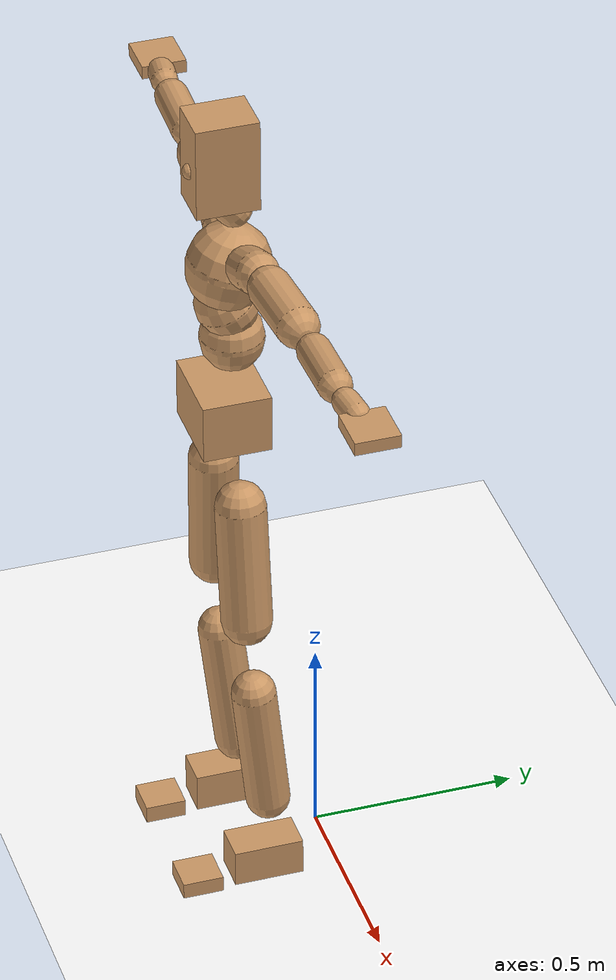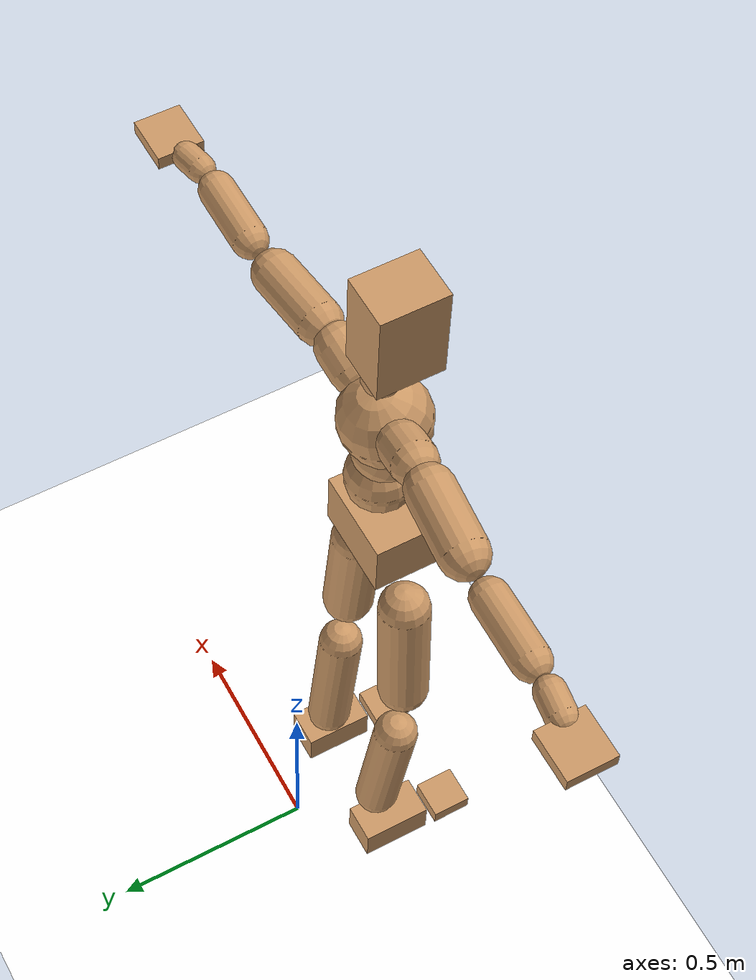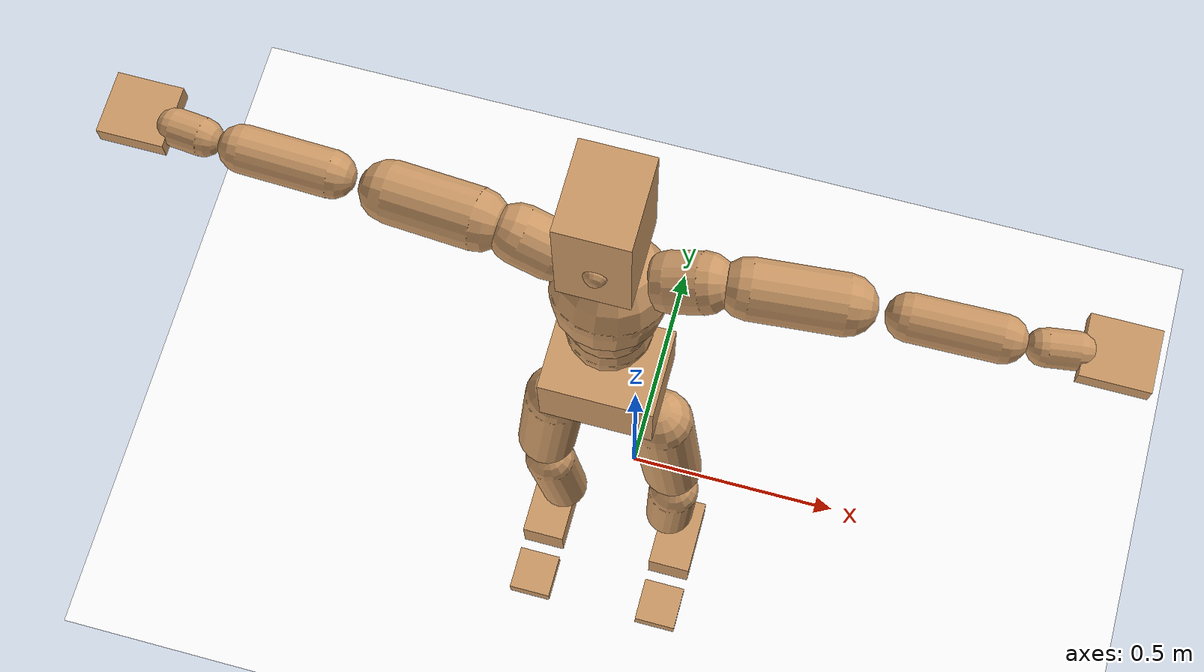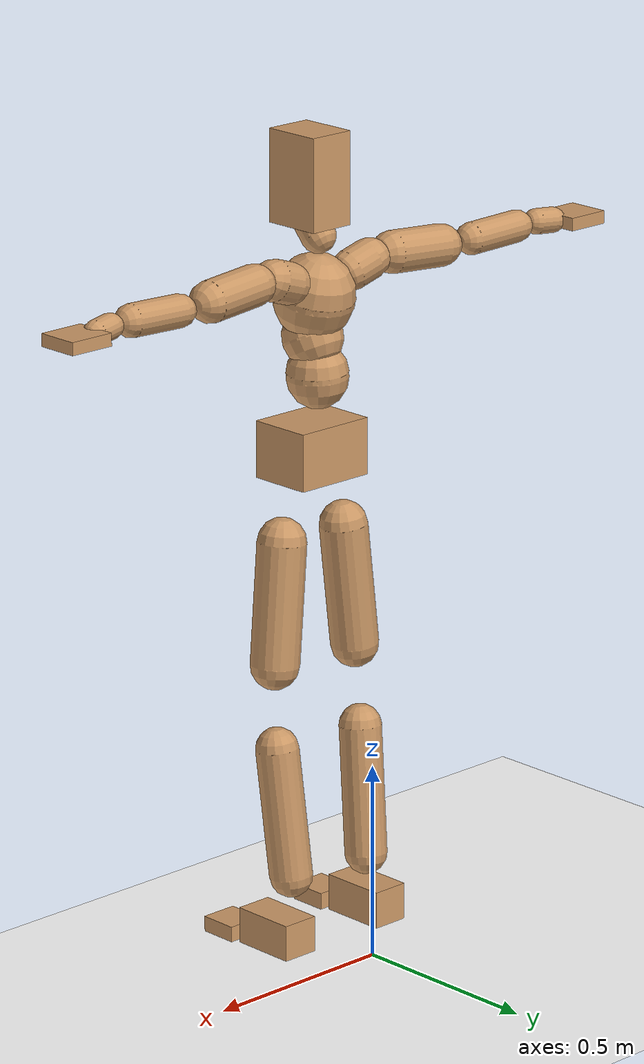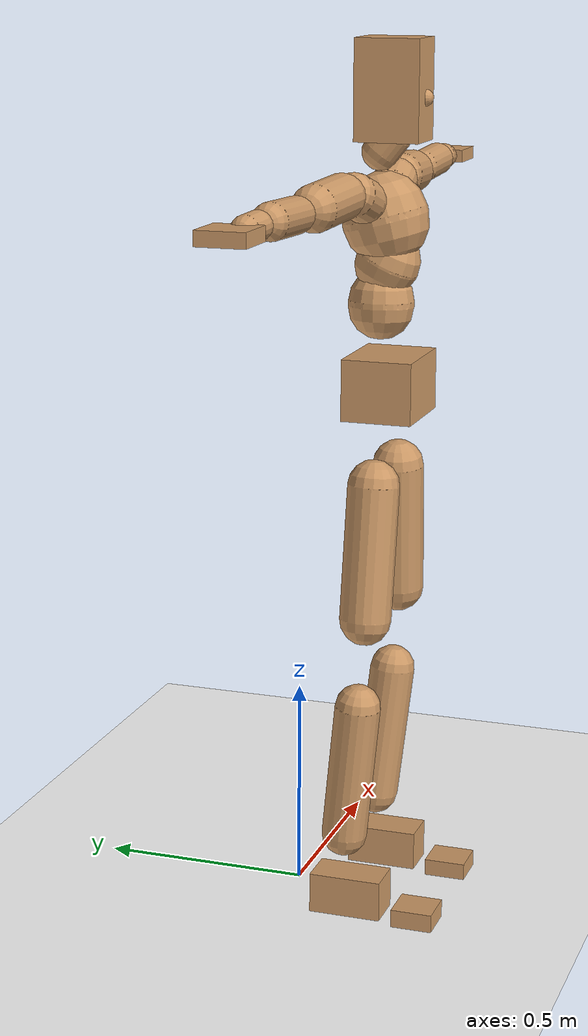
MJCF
<mujoco model="humanoid">
  <option integrator="implicitfast" />

  <visual>
    <global offwidth="1280" offheight="960" />
    <headlight active="1" ambient="0.34 0.34 0.34" diffuse="0.5 0.5 0.5" />
  </visual>

  <default>
    <joint damping="2" stiffness="2" armature="0.01" limited="true" solimplimit="0 .99 .01" />
    <geom condim="1" friction="0.7 0.005 0.0001" solimp=".99 .99 .003" solref="0.015 1" margin="0.001" rgba="0.8 0.6 .4 1" />
    <default class="smplcontact">
      <geom condim="3" friction="1. 0.005 0.0001" solref="0.015 1" solimp="0.98 0.98 0.001" priority="1" />
    </default>
    <default class="stiff_medium">
      <joint stiffness="10" />
    </default>
    <default class="stiff_medium_higher">
      <joint stiffness="50" />
    </default>
    <default class="stiff_high">
      <joint stiffness="100" />
    </default>
  </default>

  <asset>
    <texture type="skybox" builtin="gradient" rgb1="0.99 0.99 0.99" rgb2="0.608 0.828 0.892" width="100" />
    <texture builtin="flat" height="1278" mark="cross" markrgb="1 1 1" name="texgeom" random="0.01" rgb1="0.8 0.6 0.4" rgb2="0.8 0.6 0.4" type="cube" width="127" />
    <texture name="texplane" type="2d" builtin="checker" markrgb="1 1 1" rgb1="0.756 0.772 0.76" rgb2="0.6 0.6 0.6" width="100" height="100" />
    <material name="MatPlane" reflectance="0.5" texture="texplane" texrepeat="1 1" texuniform="true" />
    <material name="geom" texture="texgeom" texuniform="true" />
  </asset>

  <worldbody>
    <light name="tracking_light" pos="0 0 7" dir="0 0 -1" directional="true" cutoff="100" exponent="1" diffuse="1 1 1" specular="0.1 0.1 0.1" mode="trackcom" />
    <camera name="back" pos="0 3 2.4" xyaxes="-1 0 0 0 -1 2" mode="trackcom" />
    <camera name="side" pos="-3 0 2.4" xyaxes="0 -1 0 1 0 2" mode="trackcom" />
    <camera name="front_side" pos="-2.8 -2.8 0.8" xyaxes="0.5 -0.5 0 0.1 0.1 1" mode="trackcom" />
    <geom condim="3" name="floor" pos="0 0 0" rgba="1 1 1 1" size="100 100 .2" type="plane" material="MatPlane" />
    <body name="Pelvis" pos="-0.0018 -0.2233 1.27986" euler="90 0 0">
      <site name="Pelvis" size="0.01" />
      <freejoint name="Pelvis" />
      <geom type="box" pos="-0.0000 -0.0121 -0.0055" size="0.1069 0.0722 0.083" quat="1.0000 0.0000 0.0000 0.0000" density="3165.830099" name="Pelvis" />
      <body name="L_Hip" pos="0.0955625 -0.125675 -0.00935">
        <joint name="L_Hip_x" type="hinge" pos="0 0 0" axis="1 0 0" stiffness="17.19020566666667" range="-160.0 22.92" class="stiff_medium" damping="29.622439389561787" armature="0.022687051049198846"/>
        <joint name="L_Hip_y" type="hinge" pos="0 0 0" axis="0 1 0" stiffness="17.101416333333336" range="-70.0 70.0" class="stiff_medium" damping="16.762105650061567" armature="0.016429527259457156"/>
        <joint name="L_Hip_z" type="hinge" pos="0 0 0" axis="0 0 1" stiffness="17.118365555555556" range="-28.65 90.0" class="stiff_medium" damping="19.710911394653888" armature="0.022696093663089646"/>
        <geom type="capsule" density="2040.816327" fromto="0.0094875 -0.103125 -0.0012375 0.037675 -0.412775 -0.00495" size="0.0615" name="L_Hip" />
        <body name="L_Knee" pos="0.0471625 -0.5159 -0.0061875">
          <joint name="L_Knee_x" type="hinge" pos="0 0 0" axis="1 0 0" range="-5.16 171.89" damping="15.05645310304658" armature="0.021343797365827893" stiffness="3.3191255777777773"/>
          <joint name="L_Knee_y" type="hinge" pos="0 0 0" axis="0 1 0" range="-4.58 6.88" damping="12.97569919878145" armature="0.015441578364462114" stiffness="3.4073745111111107"/>
          <joint name="L_Knee_z" type="hinge" pos="0 0 0" axis="0 0 1" range="-6.88 4.58" damping="15.03681325523065" armature="0.021384230246159524" stiffness="3.3042128222222216"/>
          <geom type="capsule" density="1234.567901" fromto="-0.0037125 -0.10945 -0.0119625 -0.0149875 -0.4378 -0.048125" size="0.0541" name="L_Knee" />
          <body name="L_Ankle" pos="-0.0187 -0.54725 -0.0600875">
            <joint name="L_Ankle_x" type="hinge" pos="0 0 0" axis="1 0 0" range="-45.84 45.84" class="stiff_medium" damping="8.859849215456915" armature="0.01585794451740445" stiffness="13.750018"/>
            <joint name="L_Ankle_y" type="hinge" pos="0 0 0" axis="0 1 0" range="-74.48 22.92" class="stiff_medium" damping="4.399379476848856" armature="0.015640018623433526" stiffness="13.750011888888888"/>
            <joint name="L_Ankle_z" type="hinge" pos="0 0 0" axis="0 0 1" range="-4.58 4.58" class="stiff_medium" damping="8.387836414114041" armature="0.014213292870694443" stiffness="13.75"/>
            <geom type="box" pos="0.0320375 -0.0328625 0.033275" size="0.0483 0.0464 0.085" quat="1.0000 0.0000 0.0000 0.0000" density="449.071558" name="L_Ankle" class="smplcontact" />
            <body name="L_Toe" pos="0.0363 -0.076725 0.164038">
              <joint name="L_Toe_x" type="hinge" pos="0 0 0" axis="1 0 0" range="-91.67 22.92" armature="0.013386048586152204" damping="2.7133607799892205" stiffness="2.75"/>
              <joint name="L_Toe_y" type="hinge" pos="0 0 0" axis="0 1 0" range="-4.58 4.58" armature="0.012385744586589299" damping="2.610011402776646" stiffness="2.75"/>
              <joint name="L_Toe_z" type="hinge" pos="0 0 0" axis="0 0 1" range="-4.58 4.58" armature="0.010363183740583495" damping="2.3874151413863745" stiffness="2.75"/>
              <geom type="box" pos="-0.004125 0.0075625 0.0341" size="0.0478 0.02 0.0496" quat="1.0000 0.0000 0.0000 0.0000" density="423.206892" name="L_Toe" class="smplcontact" />
            </body>
          </body>
        </body>
      </body>
      <body name="R_Hip" pos="-0.0930875 -0.124437 -0.0059125">
        <joint name="R_Hip_x" type="hinge" pos="0 0 0" axis="1 0 0" stiffness="17.19020566666667" range="-160.0 22.92" class="stiff_medium" damping="29.622439389561787" armature="0.022687051049198846"/>
        <joint name="R_Hip_y" type="hinge" pos="0 0 0" axis="0 1 0" stiffness="17.101416333333336" range="-70.0 70.0" class="stiff_medium" damping="16.762105650061567" armature="0.016429527259457156"/>
        <joint name="R_Hip_z" type="hinge" pos="0 0 0" axis="0 0 1" stiffness="17.118365555555556" range="-90.0 28.65" class="stiff_medium" damping="19.710911394653888" armature="0.022696093663089646"/>
        <geom type="capsule" density="2040.816327" fromto="-0.0105875 -0.105188 -0.002475 -0.042075 -0.420887 -0.0097625" size="0.0606" name="R_Hip" />
        <body name="R_Knee" pos="-0.0526625 -0.526075 -0.0122375">
          <joint name="R_Knee_x" type="hinge" pos="0 0 0" axis="1 0 0" range="-5.16 171.89" damping="15.05645310304658" armature="0.021343797365827893" stiffness="3.3191255777777773"/>
          <joint name="R_Knee_y" type="hinge" pos="0 0 0" axis="0 1 0" range="-6.88 4.58" damping="12.97569919878145" armature="0.015441578364462114" stiffness="3.4073745111111107"/>
          <joint name="R_Knee_z" type="hinge" pos="0 0 0" axis="0 0 1" range="-4.58 6.88" damping="15.03681325523065" armature="0.021384230246159524" stiffness="3.3042128222222216"/>
          <geom type="capsule" density="1234.567901" fromto="0.0044 -0.109587 -0.0116875 0.017325 -0.438213 -0.046475" size="0.0541" name="R_Knee" />
          <body name="R_Ankle" pos="0.021725 -0.5478 -0.0581625">
            <joint name="R_Ankle_x" type="hinge" pos="0 0 0" axis="1 0 0" range="-45.84 45.84" class="stiff_medium" damping="8.859849215456915" armature="0.01585794451740445" stiffness="13.750018"/>
            <joint name="R_Ankle_y" type="hinge" pos="0 0 0" axis="0 1 0" range="-22.92 74.48" class="stiff_medium" damping="4.399379476848856" armature="0.015640018623433526" stiffness="13.750011888888888"/>
            <joint name="R_Ankle_z" type="hinge" pos="0 0 0" axis="0 0 1" range="-4.58 4.58" class="stiff_medium" damping="8.387836414114041" armature="0.014213292870694443" stiffness="13.75"/>
            <geom type="box" pos="-0.02915 -0.023925 0.0352" size="0.0483 0.0478 0.0865" quat="1.0000 0.0000 0.0000 0.0000" density="434.700981" name="R_Ankle" class="smplcontact" />
            <body name="R_Toe" pos="-0.034925 -0.0661375 0.169538">
              <joint name="R_Toe_x" type="hinge" pos="0 0 0" axis="1 0 0" range="-91.67 22.92" armature="0.013386048586152204" damping="2.7133607799892205" stiffness="2.75"/>
              <joint name="R_Toe_y" type="hinge" pos="0 0 0" axis="0 1 0" range="-4.58 4.58" armature="0.012385744586589299" damping="2.610011402776646" stiffness="2.75"/>
              <joint name="R_Toe_z" type="hinge" pos="0 0 0" axis="0 0 1" range="-4.58 4.58" armature="0.010363183740583495" damping="2.3874151413863745" stiffness="2.75"/>
              <geom type="box" pos="0.005775 0.0061875 0.0312125" size="0.0479 0.0216 0.0493" quat="1.0000 0.0000 0.0000 0.0000" density="407.384095" name="R_Toe" class="smplcontact" />
            </body>
          </body>
        </body>
      </body>
      <body name="Torso" pos="-0.0025 0.109 -0.0267">
        <joint name="Torso_x" type="hinge" pos="0 0 0" axis="1 0 0" range="-25.78 57.3" class="stiff_medium" damping="14.999999999999998" armature="0.009999999999999998" stiffness="10.0"/>
        <joint name="Torso_y" type="hinge" pos="0 0 0" axis="0 1 0" range="-57.3 57.3" class="stiff_high" damping="20.0" armature="0.01" stiffness="100.0"/>
        <joint name="Torso_z" type="hinge" pos="0 0 0" axis="0 0 1" range="-34.38 34.38" class="stiff_high" damping="19.999999999999996" armature="0.009999999999999998" stiffness="100.0"/>
        <geom type="capsule" density="2040.816327" fromto="0.0025 0.0608 0.0005 0.003 0.0743 0.0006" size="0.0769" name="Torso" />
        <body name="Spine" pos="0.0055 0.1352 0.0011">
          <joint name="Spine_x" type="hinge" pos="0 0 0" axis="1 0 0" stiffness="10.0" range="-25.78 57.3" class="stiff_medium" damping="14.999999999999996" armature="0.009999999999999995"/>
          <joint name="Spine_y" type="hinge" pos="0 0 0" axis="0 1 0" stiffness="10.0" range="-57.3 57.3" class="stiff_high" damping="8.0" armature="0.01"/>
          <joint name="Spine_z" type="hinge" pos="0 0 0" axis="0 0 1" stiffness="20.0" range="-34.38 34.38" class="stiff_high" damping="12.0" armature="0.010000000000000002"/>
          <geom type="capsule" density="2040.816327" fromto="0.0007 0.0238 0.0114 0.0008 0.0291 0.014" size="0.0755" name="Spine" />
          <body name="Chest" pos="0.0015 0.0529 0.0254">
            <joint name="Chest_x" type="hinge" pos="0 0 0" axis="1 0 0" stiffness="10.0" range="-25.78 57.3" class="stiff_medium" damping="14.999999999999993" armature="0.009999999999999993"/>
            <joint name="Chest_y" type="hinge" pos="0 0 0" axis="0 1 0" stiffness="10.0" range="-57.3 57.3" class="stiff_high" damping="8.0" armature="0.010000000000000002"/>
            <joint name="Chest_z" type="hinge" pos="0 0 0" axis="0 0 1" stiffness="20.0" range="-34.38 34.38" class="stiff_high" damping="12.0" armature="0.010000000000000002"/>
            <geom type="capsule" density="2040.816327" fromto="-0.0009 0.0682 -0.0173 -0.001 0.0833 -0.0212" size="0.1002" name="Chest" />
            <body name="Neck" pos="-0.0028 0.2139 -0.0429">
              <joint name="Neck_x" type="hinge" pos="0 0 0" axis="1 0 0" range="-28.65 57.3" class="stiff_medium_higher" damping="9.999999999999996" armature="0.009999999999999993" stiffness="50.0"/>
              <joint name="Neck_y" type="hinge" pos="0 0 0" axis="0 1 0" range="-40.11 40.11" class="stiff_medium_higher" damping="10.0" armature="0.01" stiffness="50.0"/>
              <joint name="Neck_z" type="hinge" pos="0 0 0" axis="0 0 1" range="-40.11 40.11" class="stiff_medium_higher" damping="10.000000000000004" armature="0.01000000000000001" stiffness="50.0"/>
              <geom type="capsule" density="1000" fromto="0.001 0.013 0.0103 0.0041 0.052 0.0411" size="0.0436" name="Neck" />
              <body name="Head" pos="0.0052 0.065 0.0513">
                <joint name="Head_x" type="hinge" pos="0 0 0" axis="1 0 0" range="-28.65 57.3" class="stiff_medium_higher" damping="2.000000000000002" armature="0.010000000000000023" stiffness="50.0"/>
                <joint name="Head_y" type="hinge" pos="0 0 0" axis="0 1 0" range="-40.11 40.11" class="stiff_medium_higher" damping="1.9999999999999998" armature="0.009999999999999998" stiffness="50.0"/>
                <joint name="Head_z" type="hinge" pos="0 0 0" axis="0 0 1" range="-40.11 40.11" class="stiff_medium_higher" damping="2.0000000000000004" armature="0.010000000000000007" stiffness="50.0"/>
                <geom type="box" pos="-0.0042 0.0876 -0.0116" size="0.0606 0.1154 0.076" quat="1.0000 0.0000 0.0000 0.0000" density="1018.069894" name="Head" />
                <geom type="capsule" name="nose" size="0.02 0.01" pos="0 0.07 0.05" quat="1 0 0 0" mass="0" contype="0" conaffinity="0" />
              </body>
            </body>
            <body name="L_Thorax" pos="0.0788 0.1217 -0.0341">
              <joint name="L_Thorax_x" type="hinge" pos="0 0 0" axis="1 0 0" range="-10.89 4.58" class="stiff_medium_higher" damping="19.99999999999976" armature="0.00999999999999976" stiffness="50.0"/>
              <joint name="L_Thorax_y" type="hinge" pos="0 0 0" axis="0 1 0" range="-28.65 17.19" class="stiff_medium_higher" damping="20.0" armature="0.01" stiffness="50.0"/>
              <joint name="L_Thorax_z" type="hinge" pos="0 0 0" axis="0 0 1" range="-31.51 40.11" class="stiff_medium_higher" damping="19.999999999999996" armature="0.009999999999999995" stiffness="50.0"/>
              <geom type="capsule" density="1000" fromto="0.0182 0.0061 -0.0018 0.0728 0.0244 -0.0071" size="0.0521" name="L_Thorax" />
              <body name="L_Shoulder" pos="0.091 0.0305 -0.0089">
                <joint name="L_Shoulder_x" type="hinge" pos="0 0 0" axis="1 0 0" range="-97.4 97.4" class="stiff_medium" damping="5.999999999999959" armature="0.009999999999999863" stiffness="10.0"/>
                <joint name="L_Shoulder_y" type="hinge" pos="0 0 0" axis="0 1 0" range="-108.86 80.21" class="stiff_medium" damping="6.0" armature="0.01" stiffness="10.0"/>
                <joint name="L_Shoulder_z" type="hinge" pos="0 0 0" axis="0 0 1" range="-97.4 85.94" class="stiff_medium" damping="6.0" armature="0.01" stiffness="10.0"/>
                <geom type="capsule" density="1000" fromto="0.0519 -0.0026 -0.0055 0.2077 -0.0102 -0.022" size="0.0517" name="L_Shoulder" />
                <body name="L_Elbow" pos="0.2596 -0.0128 -0.0275">
                  <joint name="L_Elbow_x" type="hinge" pos="0 0 0" axis="1 0 0" range="-17.19 4.58" damping="4.999999999999895" armature="0.009999999999999582" stiffness="2.0"/>
                  <joint name="L_Elbow_y" type="hinge" pos="0 0 0" axis="0 1 0" range="-180.0 17.19" damping="5.000000000000005" armature="0.010000000000000023" stiffness="2.0"/>
                  <joint name="L_Elbow_z" type="hinge" pos="0 0 0" axis="0 0 1" range="-100.84 4.58" damping="5.000000000000005" armature="0.010000000000000024" stiffness="2.0"/>
                  <geom type="capsule" density="1000" fromto="0.0498 0.0018 -0.0002 0.1994 0.0072 -0.0009" size="0.0405" name="L_Elbow" />
                  <body name="L_Wrist" pos="0.2492 0.009 -0.0012">
                    <joint name="L_Wrist_x" type="hinge" pos="0 0 0" axis="1 0 0" range="-180.0 22.92" armature="0.010000000000000129" damping="2.000000000000013" stiffness="2.0"/>
                    <joint name="L_Wrist_y" type="hinge" pos="0 0 0" axis="0 1 0" range="-17.19 17.19" armature="0.010000000000000094" damping="2.0000000000000093" stiffness="2.0"/>
                    <joint name="L_Wrist_z" type="hinge" pos="0 0 0" axis="0 0 1" range="-22.92 22.92" armature="0.010000000000000023" damping="2.000000000000002" stiffness="2.0"/>
                    <geom type="capsule" density="1000" fromto="0.0168 -0.0016 -0.003 0.0672 -0.0065 -0.012" size="0.0318" name="L_Wrist" class="smplcontact" />
                    <body name="L_Hand" pos="0.084 -0.0082 -0.0149">
                      <joint name="L_Hand_x" type="hinge" pos="0 0 0" axis="1 0 0" range="-17.19 17.19" armature="0.01000000000000026" damping="2.0000000000000258" stiffness="2.0"/>
                      <joint name="L_Hand_y" type="hinge" pos="0 0 0" axis="0 1 0" range="-51.57 51.57" armature="0.00999999999999999" damping="1.999999999999999" stiffness="2.0"/>
                      <joint name="L_Hand_z" type="hinge" pos="0 0 0" axis="0 0 1" range="-91.67 91.67" armature="0.010000000000000031" damping="2.000000000000003" stiffness="2.0"/>
                      <geom type="box" pos="0.0493 0.001 -0.0058" size="0.0585 0.0158 0.0538" quat="1.0000 0.0000 0.0000 0.0000" density="400.552564" name="L_Hand" class="smplcontact" />
                    </body>
                  </body>
                </body>
              </body>
            </body>
            <body name="R_Thorax" pos="-0.0818 0.1188 -0.0386">
              <joint name="R_Thorax_x" type="hinge" pos="0 0 0" axis="1 0 0" range="-10.89 4.58" class="stiff_medium_higher" damping="19.99999999999976" armature="0.00999999999999976" stiffness="50.0"/>
              <joint name="R_Thorax_y" type="hinge" pos="0 0 0" axis="0 1 0" range="-17.19 28.65" class="stiff_medium_higher" damping="20.0" armature="0.01" stiffness="50.0"/>
              <joint name="R_Thorax_z" type="hinge" pos="0 0 0" axis="0 0 1" range="-40.11 31.51" class="stiff_medium_higher" damping="19.999999999999996" armature="0.009999999999999995" stiffness="50.0"/>
              <geom type="capsule" density="1000" fromto="-0.0192 0.0065 -0.0018 -0.0768 0.026 -0.0073" size="0.0511" name="R_Thorax" />
              <body name="R_Shoulder" pos="-0.096 0.0326 -0.0091">
                <joint name="R_Shoulder_x" type="hinge" pos="0 0 0" axis="1 0 0" range="-97.4 97.4" class="stiff_medium" damping="5.999999999999959" armature="0.009999999999999863" stiffness="10.0"/>
                <joint name="R_Shoulder_y" type="hinge" pos="0 0 0" axis="0 1 0" range="-80.21 108.86" class="stiff_medium" damping="6.0" armature="0.01" stiffness="10.0"/>
                <joint name="R_Shoulder_z" type="hinge" pos="0 0 0" axis="0 0 1" range="-85.94 97.4" class="stiff_medium" damping="6.0" armature="0.01" stiffness="10.0"/>
                <geom type="capsule" density="1000" fromto="-0.0507 -0.0027 -0.0043 -0.203 -0.0107 -0.0171" size="0.0531" name="R_Shoulder" />
                <body name="R_Elbow" pos="-0.2537 -0.0133 -0.0214">
                  <joint name="R_Elbow_x" type="hinge" pos="0 0 0" axis="1 0 0" range="-17.19 4.58" damping="4.999999999999895" armature="0.009999999999999582" stiffness="2.0"/>
                  <joint name="R_Elbow_y" type="hinge" pos="0 0 0" axis="0 1 0" range="-17.19 180.0" damping="5.000000000000005" armature="0.010000000000000023" stiffness="2.0"/>
                  <joint name="R_Elbow_z" type="hinge" pos="0 0 0" axis="0 0 1" range="-4.58 100.84" damping="5.000000000000005" armature="0.010000000000000024" stiffness="2.0"/>
                  <geom type="capsule" density="1000" fromto="-0.0511 0.0016 -0.0011 -0.2042 0.0062 -0.0044" size="0.0408" name="R_Elbow" />
                  <body name="R_Wrist" pos="-0.2553 0.0078 -0.0056">
                    <joint name="R_Wrist_x" type="hinge" pos="0 0 0" axis="1 0 0" range="-180.0 22.92" armature="0.010000000000000129" damping="2.000000000000013" stiffness="2.0"/>
                    <joint name="R_Wrist_y" type="hinge" pos="0 0 0" axis="0 1 0" range="-17.19 17.19" armature="0.010000000000000094" damping="2.0000000000000093" stiffness="2.0"/>
                    <joint name="R_Wrist_z" type="hinge" pos="0 0 0" axis="0 0 1" range="-22.92 22.92" armature="0.010000000000000023" damping="2.000000000000002" stiffness="2.0"/>
                    <geom type="capsule" density="1000" fromto="-0.0169 -0.0012 -0.0021 -0.0677 -0.0049 -0.0083" size="0.0326" name="R_Wrist" class="smplcontact" />
                    <body name="R_Hand" pos="-0.0846 -0.0061 -0.0103">
                      <joint name="R_Hand_x" type="hinge" pos="0 0 0" axis="1 0 0" range="-17.19 17.19" armature="0.01000000000000026" damping="2.0000000000000258" stiffness="2.0"/>
                      <joint name="R_Hand_y" type="hinge" pos="0 0 0" axis="0 1 0" range="-51.57 51.57" armature="0.00999999999999999" damping="1.999999999999999" stiffness="2.0"/>
                      <joint name="R_Hand_z" type="hinge" pos="0 0 0" axis="0 0 1" range="-91.67 91.67" armature="0.010000000000000031" damping="2.000000000000003" stiffness="2.0"/>
                      <geom type="box" pos="-0.0462 -0.0009 -0.0079" size="0.0569 0.0164 0.0546" quat="1.0000 0.0000 0.0000 0.0000" density="403.679611" name="R_Hand" class="smplcontact" />
                    </body>
                  </body>
                </body>
              </body>
            </body>
          </body>
        </body>
      </body>
    </body>
  </worldbody>
  <actuator>
    <general name="L_Hip_x" joint="L_Hip_x" biastype="affine" gainprm="493.92628960494903" biasprm="-370.14769177261326 -309.4237020000001 -3.949658585274905" ctrllimited="true" ctrlrange="-1 1" forcerange="-618.8474040000002 618.8474040000002" />
    <general name="L_Hip_y" joint="L_Hip_y" biastype="affine" gainprm="376.07978743146356" biasprm="0.0 -307.82549400000005 -3.3524211300123135" ctrllimited="true" ctrlrange="-1 1" forcerange="-615.6509880000001 615.6509880000001" />
    <general name="L_Hip_z" joint="L_Hip_z" biastype="affine" gainprm="319.0435109505085" biasprm="164.96687228667253 -308.13058 -3.9421822789307774" ctrllimited="true" ctrlrange="-1 1" forcerange="-616.26116 616.26116" />
    <general name="L_Knee_x" joint="L_Knee_x" biastype="affine" gainprm="461.5401602750161" biasprm="434.6376217037753 -298.721302 -3.764113275761645" ctrllimited="true" ctrlrange="-1 1" forcerange="-597.442604 597.442604" />
    <general name="L_Knee_y" joint="L_Knee_y" biastype="affine" gainprm="30.668629527569003" biasprm="6.155135070978073 -306.66370599999993 -3.2439247996953626" ctrllimited="true" ctrlrange="-1 1" forcerange="-613.3274119999999 613.3274119999999" />
    <general name="L_Knee_z" joint="L_Knee_z" biastype="affine" gainprm="29.740105936265863" biasprm="-5.968782168709554 -297.3791539999999 -3.7592033138076624" ctrllimited="true" ctrlrange="-1 1" forcerange="-594.7583079999998 594.7583079999998" />
    <general name="L_Ankle_x" joint="L_Ankle_x" biastype="affine" gainprm="99.00742208742888" biasprm="0.0 -123.75016200000002 -2.9532830718189715" ctrllimited="true" ctrlrange="-1 1" forcerange="-247.50032400000003 247.50032400000003" />
    <general name="L_Ankle_y" joint="L_Ankle_y" biastype="affine" gainprm="105.18453998036527" biasprm="-55.68085093827139 -123.750107 -2.9329196512325706" ctrllimited="true" ctrlrange="-1 1" forcerange="-247.500214 247.500214" />
    <general name="L_Ankle_z" joint="L_Ankle_z" biastype="affine" gainprm="9.89208986799086" biasprm="0.0 -123.75 -2.795945471371347" ctrllimited="true" ctrlrange="-1 1" forcerange="-247.5 247.5" />
    <general name="L_Toe_x" joint="L_Toe_x" biastype="affine" gainprm="98.99865309808496" biasprm="-59.39573610693202 -99.0 -1.0853443119956883" ctrllimited="true" ctrlrange="-1 1" forcerange="-198.0 198.0" />
    <general name="L_Toe_y" joint="L_Toe_y" biastype="affine" gainprm="7.913671894392689" biasprm="0.0 -99.0 -1.0440045611106583" ctrllimited="true" ctrlrange="-1 1" forcerange="-198.0 198.0" />
    <general name="L_Toe_z" joint="L_Toe_z" biastype="affine" gainprm="7.913671894392689" biasprm="0.0 -99.0 -0.9549660565545498" ctrllimited="true" ctrlrange="-1 1" forcerange="-198.0 198.0" />
    <general name="R_Hip_x" joint="R_Hip_x" biastype="affine" gainprm="493.92628960494903" biasprm="-370.14769177261326 -309.4237020000001 -3.949658585274905" ctrllimited="true" ctrlrange="-1 1" forcerange="-618.8474040000002 618.8474040000002" />
    <general name="R_Hip_y" joint="R_Hip_y" biastype="affine" gainprm="376.07978743146356" biasprm="0.0 -307.82549400000005 -3.3524211300123135" ctrllimited="true" ctrlrange="-1 1" forcerange="-615.6509880000001 615.6509880000001" />
    <general name="R_Hip_z" joint="R_Hip_z" biastype="affine" gainprm="319.0435109505085" biasprm="-164.96687228667253 -308.13058 -3.9421822789307774" ctrllimited="true" ctrlrange="-1 1" forcerange="-616.26116 616.26116" />
    <general name="R_Knee_x" joint="R_Knee_x" biastype="affine" gainprm="461.5401602750161" biasprm="434.6376217037753 -298.721302 -3.764113275761645" ctrllimited="true" ctrlrange="-1 1" forcerange="-597.442604 597.442604" />
    <general name="R_Knee_y" joint="R_Knee_y" biastype="affine" gainprm="30.668629527569003" biasprm="-6.155135070978073 -306.66370599999993 -3.2439247996953626" ctrllimited="true" ctrlrange="-1 1" forcerange="-613.3274119999999 613.3274119999999" />
    <general name="R_Knee_z" joint="R_Knee_z" biastype="affine" gainprm="29.740105936265863" biasprm="5.968782168709554 -297.3791539999999 -3.7592033138076624" ctrllimited="true" ctrlrange="-1 1" forcerange="-594.7583079999998 594.7583079999998" />
    <general name="R_Ankle_x" joint="R_Ankle_x" biastype="affine" gainprm="99.00742208742888" biasprm="0.0 -123.75016200000002 -2.9532830718189715" ctrllimited="true" ctrlrange="-1 1" forcerange="-247.50032400000003 247.50032400000003" />
    <general name="R_Ankle_y" joint="R_Ankle_y" biastype="affine" gainprm="105.18453998036527" biasprm="55.68085093827139 -123.750107 -2.9329196512325706" ctrllimited="true" ctrlrange="-1 1" forcerange="-247.500214 247.500214" />
    <general name="R_Ankle_z" joint="R_Ankle_z" biastype="affine" gainprm="9.89208986799086" biasprm="0.0 -123.75 -2.795945471371347" ctrllimited="true" ctrlrange="-1 1" forcerange="-247.5 247.5" />
    <general name="R_Toe_x" joint="R_Toe_x" biastype="affine" gainprm="98.99865309808496" biasprm="-59.39573610693202 -99.0 -1.0853443119956883" ctrllimited="true" ctrlrange="-1 1" forcerange="-198.0 198.0" />
    <general name="R_Toe_y" joint="R_Toe_y" biastype="affine" gainprm="7.913671894392689" biasprm="0.0 -99.0 -1.0440045611106583" ctrllimited="true" ctrlrange="-1 1" forcerange="-198.0 198.0" />
    <general name="R_Toe_z" joint="R_Toe_z" biastype="affine" gainprm="7.913671894392689" biasprm="0.0 -99.0 -0.9549660565545498" ctrllimited="true" ctrlrange="-1 1" forcerange="-198.0 198.0" />
    <general name="Torso_x" joint="Torso_x" biastype="affine" gainprm="174.00234510682668" biasprm="66.0153336274335 -240.0 -3.9999999999999996" ctrllimited="true" ctrlrange="-1 1" forcerange="-360.0 360.0" />
    <general name="Torso_y" joint="Torso_y" biastype="affine" gainprm="240.0176787342602" biasprm="0.0 -240.0 -4.0" ctrllimited="true" ctrlrange="-1 1" forcerange="-360.0 360.0" />
    <general name="Torso_z" joint="Torso_z" biastype="affine" gainprm="144.01060724055614" biasprm="0.0 -240.0 -3.9999999999999996" ctrllimited="true" ctrlrange="-1 1" forcerange="-360.0 360.0" />
    <general name="Spine_x" joint="Spine_x" biastype="affine" gainprm="174.00234510682668" biasprm="66.0153336274335 -240.0 -3.999999999999999" ctrllimited="true" ctrlrange="-1 1" forcerange="-360.0 360.0" />
    <general name="Spine_y" joint="Spine_y" biastype="affine" gainprm="240.0176787342602" biasprm="0.0 -240.0 -4.0" ctrllimited="true" ctrlrange="-1 1" forcerange="-360.0 360.0" />
    <general name="Spine_z" joint="Spine_z" biastype="affine" gainprm="144.01060724055614" biasprm="0.0 -240.0 -4.0" ctrllimited="true" ctrlrange="-1 1" forcerange="-360.0 360.0" />
    <general name="Chest_x" joint="Chest_x" biastype="affine" gainprm="174.00234510682668" biasprm="66.0153336274335 -240.0 -3.9999999999999982" ctrllimited="true" ctrlrange="-1 1" forcerange="-360.0 360.0" />
    <general name="Chest_y" joint="Chest_y" biastype="affine" gainprm="240.0176787342602" biasprm="0.0 -240.0 -4.0" ctrllimited="true" ctrlrange="-1 1" forcerange="-360.0 360.0" />
    <general name="Chest_z" joint="Chest_z" biastype="affine" gainprm="144.01060724055614" biasprm="0.0 -240.0 -4.0" ctrllimited="true" ctrlrange="-1 1" forcerange="-360.0 360.0" />
    <general name="Neck_x" joint="Neck_x" biastype="affine" gainprm="27.00198885760427" biasprm="9.000662952534757 -36.0 -0.7999999999999997" ctrllimited="true" ctrlrange="-1 1" forcerange="-72.0 72.0" />
    <general name="Neck_y" joint="Neck_y" biastype="affine" gainprm="25.20185626709732" biasprm="0.0 -36.0 -0.8" ctrllimited="true" ctrlrange="-1 1" forcerange="-72.0 72.0" />
    <general name="Neck_z" joint="Neck_z" biastype="affine" gainprm="25.20185626709732" biasprm="0.0 -36.0 -0.8000000000000004" ctrllimited="true" ctrlrange="-1 1" forcerange="-72.0 72.0" />
    <general name="Head_x" joint="Head_x" biastype="affine" gainprm="18.001325905069514" biasprm="6.000441968356505 -24.0 -0.8000000000000009" ctrllimited="true" ctrlrange="-1 1" forcerange="-48.0 48.0" />
    <general name="Head_y" joint="Head_y" biastype="affine" gainprm="16.801237511398213" biasprm="0.0 -24.0 -0.7999999999999999" ctrllimited="true" ctrlrange="-1 1" forcerange="-48.0 48.0" />
    <general name="Head_z" joint="Head_z" biastype="affine" gainprm="16.801237511398213" biasprm="0.0 -24.0 -0.8000000000000003" ctrllimited="true" ctrlrange="-1 1" forcerange="-48.0 48.0" />
    <general name="L_Thorax_x" joint="L_Thorax_x" biastype="affine" gainprm="16.200146117011364" biasprm="-6.6078165480505335 -120.0 -1.599999999999981" ctrllimited="true" ctrlrange="-1 1" forcerange="-240.0 240.0" />
    <general name="L_Thorax_y" joint="L_Thorax_y" biastype="affine" gainprm="48.00353574685204" biasprm="-12.00088393671301 -120.0 -1.6" ctrllimited="true" ctrlrange="-1 1" forcerange="-240.0 240.0" />
    <general name="L_Thorax_z" joint="L_Thorax_z" biastype="affine" gainprm="75.00028861670033" biasprm="9.00589894029074 -120.0 -1.5999999999999996" ctrllimited="true" ctrlrange="-1 1" forcerange="-240.0 240.0" />
    <general name="L_Shoulder_x" joint="L_Shoulder_x" biastype="affine" gainprm="81.5976331892389" biasprm="0.0 -48.0 -1.599999999999989" ctrllimited="true" ctrlrange="-1 1" forcerange="-96.0 96.0" />
    <general name="L_Shoulder_y" joint="L_Shoulder_y" biastype="affine" gainprm="79.19745640189629" biasprm="-12.00088393671301 -48.0 -1.6" ctrllimited="true" ctrlrange="-1 1" forcerange="-96.0 96.0" />
    <general name="L_Shoulder_z" joint="L_Shoulder_z" biastype="affine" gainprm="76.79727961455369" biasprm="-4.800353574685214 -48.0 -1.6" ctrllimited="true" ctrlrange="-1 1" forcerange="-96.0 96.0" />
    <general name="L_Elbow_x" joint="L_Elbow_x" biastype="affine" gainprm="13.67849441372996" biasprm="-7.923096672353461 -72.0 -0.7999999999999833" ctrllimited="true" ctrlrange="-1 1" forcerange="-144.0 144.0" />
    <general name="L_Elbow_y" joint="L_Elbow_y" biastype="affine" gainprm="123.89813107227425" biasprm="-102.29653998619085 -72.0 -0.8000000000000009" ctrllimited="true" ctrlrange="-1 1" forcerange="-144.0 144.0" />
    <general name="L_Elbow_z" joint="L_Elbow_z" biastype="affine" gainprm="66.23733950828719" biasprm="-60.4819417669107 -72.0 -0.8000000000000009" ctrllimited="true" ctrlrange="-1 1" forcerange="-144.0 144.0" />
    <general name="L_Wrist_x" joint="L_Wrist_x" biastype="affine" gainprm="21.24973270888136" biasprm="-16.449379134196157 -12.0 -0.8000000000000052" ctrllimited="true" ctrlrange="-1 1" forcerange="-24.0 24.0" />
    <general name="L_Wrist_y" joint="L_Wrist_y" biastype="affine" gainprm="3.6002651810139037" biasprm="0.0 -12.0 -0.8000000000000038" ctrllimited="true" ctrlrange="-1 1" forcerange="-24.0 24.0" />
    <general name="L_Wrist_z" joint="L_Wrist_z" biastype="affine" gainprm="4.800353574685205" biasprm="0.0 -12.0 -0.8000000000000009" ctrllimited="true" ctrlrange="-1 1" forcerange="-24.0 24.0" />
    <general name="L_Hand_x" joint="L_Hand_x" biastype="affine" gainprm="3.6002651810139037" biasprm="0.0 -12.0 -0.8000000000000104" ctrllimited="true" ctrlrange="-1 1" forcerange="-24.0 24.0" />
    <general name="L_Hand_y" joint="L_Hand_y" biastype="affine" gainprm="10.800795543041708" biasprm="0.0 -12.0 -0.7999999999999996" ctrllimited="true" ctrlrange="-1 1" forcerange="-24.0 24.0" />
    <general name="L_Hand_z" joint="L_Hand_z" biastype="affine" gainprm="19.199319903638422" biasprm="0.0 -12.0 -0.8000000000000013" ctrllimited="true" ctrlrange="-1 1" forcerange="-24.0 24.0" />
    <general name="R_Thorax_x" joint="R_Thorax_x" biastype="affine" gainprm="16.200146117011364" biasprm="-6.6078165480505335 -120.0 -1.599999999999981" ctrllimited="true" ctrlrange="-1 1" forcerange="-240.0 240.0" />
    <general name="R_Thorax_y" joint="R_Thorax_y" biastype="affine" gainprm="48.00353574685204" biasprm="12.000883936713002 -120.0 -1.6" ctrllimited="true" ctrlrange="-1 1" forcerange="-240.0 240.0" />
    <general name="R_Thorax_z" joint="R_Thorax_z" biastype="affine" gainprm="75.00028861670033" biasprm="-9.00589894029074 -120.0 -1.5999999999999996" ctrllimited="true" ctrlrange="-1 1" forcerange="-240.0 240.0" />
    <general name="R_Shoulder_x" joint="R_Shoulder_x" biastype="affine" gainprm="81.5976331892389" biasprm="0.0 -48.0 -1.599999999999989" ctrllimited="true" ctrlrange="-1 1" forcerange="-96.0 96.0" />
    <general name="R_Shoulder_y" joint="R_Shoulder_y" biastype="affine" gainprm="79.19745640189629" biasprm="12.00088393671301 -48.0 -1.6" ctrllimited="true" ctrlrange="-1 1" forcerange="-96.0 96.0" />
    <general name="R_Shoulder_z" joint="R_Shoulder_z" biastype="affine" gainprm="76.79727961455369" biasprm="4.800353574685204 -48.0 -1.6" ctrllimited="true" ctrlrange="-1 1" forcerange="-96.0 96.0" />
    <general name="R_Elbow_x" joint="R_Elbow_x" biastype="affine" gainprm="13.67849441372996" biasprm="-7.923096672353461 -72.0 -0.7999999999999833" ctrllimited="true" ctrlrange="-1 1" forcerange="-144.0 144.0" />
    <general name="R_Elbow_y" joint="R_Elbow_y" biastype="affine" gainprm="123.89813107227425" biasprm="102.29653998619085 -72.0 -0.8000000000000009" ctrllimited="true" ctrlrange="-1 1" forcerange="-144.0 144.0" />
    <general name="R_Elbow_z" joint="R_Elbow_z" biastype="affine" gainprm="66.23733950828719" biasprm="60.481941766910694 -72.0 -0.8000000000000009" ctrllimited="true" ctrlrange="-1 1" forcerange="-144.0 144.0" />
    <general name="R_Wrist_x" joint="R_Wrist_x" biastype="affine" gainprm="21.24973270888136" biasprm="-16.449379134196157 -12.0 -0.8000000000000052" ctrllimited="true" ctrlrange="-1 1" forcerange="-24.0 24.0" />
    <general name="R_Wrist_y" joint="R_Wrist_y" biastype="affine" gainprm="3.6002651810139037" biasprm="0.0 -12.0 -0.8000000000000038" ctrllimited="true" ctrlrange="-1 1" forcerange="-24.0 24.0" />
    <general name="R_Wrist_z" joint="R_Wrist_z" biastype="affine" gainprm="4.800353574685205" biasprm="0.0 -12.0 -0.8000000000000009" ctrllimited="true" ctrlrange="-1 1" forcerange="-24.0 24.0" />
    <general name="R_Hand_x" joint="R_Hand_x" biastype="affine" gainprm="3.6002651810139037" biasprm="0.0 -12.0 -0.8000000000000104" ctrllimited="true" ctrlrange="-1 1" forcerange="-24.0 24.0" />
    <general name="R_Hand_y" joint="R_Hand_y" biastype="affine" gainprm="10.800795543041708" biasprm="0.0 -12.0 -0.7999999999999996" ctrllimited="true" ctrlrange="-1 1" forcerange="-24.0 24.0" />
    <general name="R_Hand_z" joint="R_Hand_z" biastype="affine" gainprm="19.199319903638422" biasprm="0.0 -12.0 -0.8000000000000013" ctrllimited="true" ctrlrange="-1 1" forcerange="-24.0 24.0" />
  </actuator>
  <contact>
    <exclude body1="Torso" body2="Chest" />
    <exclude body1="Head" body2="Chest" />
    <exclude body1="R_Knee" body2="R_Toe" />
    <exclude body1="R_Knee" body2="L_Ankle" />
    <exclude body1="R_Knee" body2="L_Toe" />
    <exclude body1="L_Knee" body2="L_Toe" />
    <exclude body1="L_Knee" body2="R_Ankle" />
    <exclude body1="L_Knee" body2="R_Toe" />
    <exclude body1="L_Shoulder" body2="Chest" />
    <exclude body1="R_Shoulder" body2="Chest" />
  </contact>
  <sensor>
    <framelinvel name="sensor_Pelvis_framelinvel" objtype="xbody" objname="Pelvis" />
    <framelinvel name="sensor_L_Hip_framelinvel" objtype="xbody" objname="L_Hip" />
    <framelinvel name="sensor_L_Knee_framelinvel" objtype="xbody" objname="L_Knee" />
    <framelinvel name="sensor_L_Ankle_framelinvel" objtype="xbody" objname="L_Ankle" />
    <framelinvel name="sensor_L_Toe_framelinvel" objtype="xbody" objname="L_Toe" />
    <framelinvel name="sensor_R_Hip_framelinvel" objtype="xbody" objname="R_Hip" />
    <framelinvel name="sensor_R_Knee_framelinvel" objtype="xbody" objname="R_Knee" />
    <framelinvel name="sensor_R_Ankle_framelinvel" objtype="xbody" objname="R_Ankle" />
    <framelinvel name="sensor_R_Toe_framelinvel" objtype="xbody" objname="R_Toe" />
    <framelinvel name="sensor_Torso_framelinvel" objtype="xbody" objname="Torso" />
    <framelinvel name="sensor_Spine_framelinvel" objtype="xbody" objname="Spine" />
    <framelinvel name="sensor_Chest_framelinvel" objtype="xbody" objname="Chest" />
    <framelinvel name="sensor_Neck_framelinvel" objtype="xbody" objname="Neck" />
    <framelinvel name="sensor_Head_framelinvel" objtype="xbody" objname="Head" />
    <framelinvel name="sensor_L_Thorax_framelinvel" objtype="xbody" objname="L_Thorax" />
    <framelinvel name="sensor_L_Shoulder_framelinvel" objtype="xbody" objname="L_Shoulder" />
    <framelinvel name="sensor_L_Elbow_framelinvel" objtype="xbody" objname="L_Elbow" />
    <framelinvel name="sensor_L_Wrist_framelinvel" objtype="xbody" objname="L_Wrist" />
    <framelinvel name="sensor_L_Hand_framelinvel" objtype="xbody" objname="L_Hand" />
    <framelinvel name="sensor_R_Thorax_framelinvel" objtype="xbody" objname="R_Thorax" />
    <framelinvel name="sensor_R_Shoulder_framelinvel" objtype="xbody" objname="R_Shoulder" />
    <framelinvel name="sensor_R_Elbow_framelinvel" objtype="xbody" objname="R_Elbow" />
    <framelinvel name="sensor_R_Wrist_framelinvel" objtype="xbody" objname="R_Wrist" />
    <framelinvel name="sensor_R_Hand_framelinvel" objtype="xbody" objname="R_Hand" />
    <frameangvel name="sensor_Pelvis_frameangvel" objtype="xbody" objname="Pelvis" />
    <frameangvel name="sensor_L_Hip_frameangvel" objtype="xbody" objname="L_Hip" />
    <frameangvel name="sensor_L_Knee_frameangvel" objtype="xbody" objname="L_Knee" />
    <frameangvel name="sensor_L_Ankle_frameangvel" objtype="xbody" objname="L_Ankle" />
    <frameangvel name="sensor_L_Toe_frameangvel" objtype="xbody" objname="L_Toe" />
    <frameangvel name="sensor_R_Hip_frameangvel" objtype="xbody" objname="R_Hip" />
    <frameangvel name="sensor_R_Knee_frameangvel" objtype="xbody" objname="R_Knee" />
    <frameangvel name="sensor_R_Ankle_frameangvel" objtype="xbody" objname="R_Ankle" />
    <frameangvel name="sensor_R_Toe_frameangvel" objtype="xbody" objname="R_Toe" />
    <frameangvel name="sensor_Torso_frameangvel" objtype="xbody" objname="Torso" />
    <frameangvel name="sensor_Spine_frameangvel" objtype="xbody" objname="Spine" />
    <frameangvel name="sensor_Chest_frameangvel" objtype="xbody" objname="Chest" />
    <frameangvel name="sensor_Neck_frameangvel" objtype="xbody" objname="Neck" />
    <frameangvel name="sensor_Head_frameangvel" objtype="xbody" objname="Head" />
    <frameangvel name="sensor_L_Thorax_frameangvel" objtype="xbody" objname="L_Thorax" />
    <frameangvel name="sensor_L_Shoulder_frameangvel" objtype="xbody" objname="L_Shoulder" />
    <frameangvel name="sensor_L_Elbow_frameangvel" objtype="xbody" objname="L_Elbow" />
    <frameangvel name="sensor_L_Wrist_frameangvel" objtype="xbody" objname="L_Wrist" />
    <frameangvel name="sensor_L_Hand_frameangvel" objtype="xbody" objname="L_Hand" />
    <frameangvel name="sensor_R_Thorax_frameangvel" objtype="xbody" objname="R_Thorax" />
    <frameangvel name="sensor_R_Shoulder_frameangvel" objtype="xbody" objname="R_Shoulder" />
    <frameangvel name="sensor_R_Elbow_frameangvel" objtype="xbody" objname="R_Elbow" />
    <frameangvel name="sensor_R_Wrist_frameangvel" objtype="xbody" objname="R_Wrist" />
    <frameangvel name="sensor_R_Hand_frameangvel" objtype="xbody" objname="R_Hand" />
    <subtreelinvel name="Chest_subtreelinvel" body="Chest" />
    <gyro name="Pelvis_gyro" site="Pelvis" />
  </sensor>
</mujoco>
